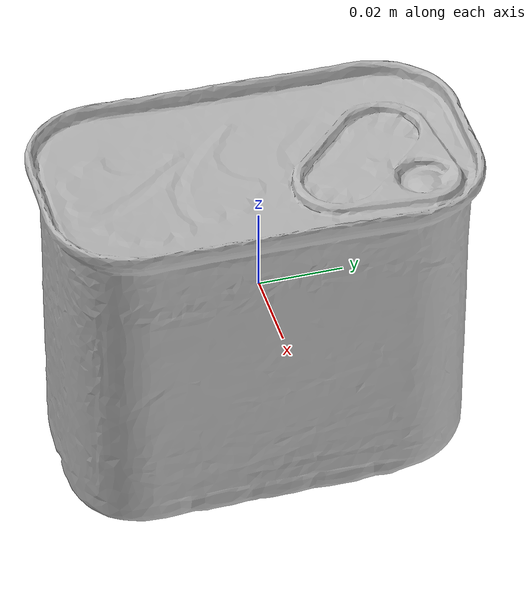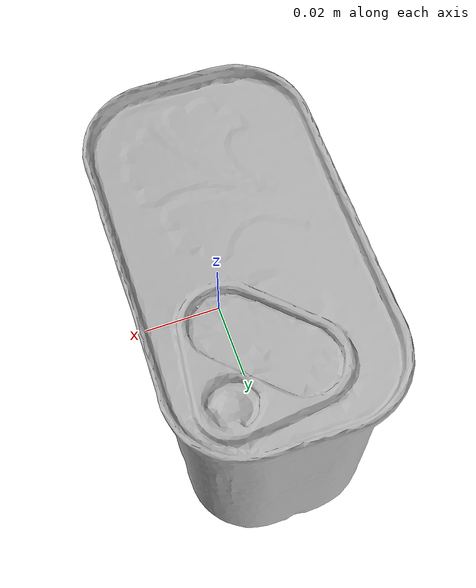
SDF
<?xml version='1.0'?>
<sdf version="1.4">
  <model name="meat_can">
    <static>0</static>
    <link name="link">
      <inertial>
        <mass>0.34</mass>
        <!-- https://www.google.com/search?q=12+oz+to+kg&oq=12+oz+to+kg&aqs=chrome..69i57j6j0.1740j0j4&sourceid=chrome&ie=UTF-8 -->
        <inertia> <!-- inertias are tricky to compute -->
          <!-- http://gazebosim.org/tutorials?tut=inertia&cat=build_robot -->
          <ixx>0.000287</ixx>    <!-- for a box: ixx = 0.083 * mass * (y*y + z*z) -->
          <ixy>0.0</ixy>         <!-- for a box: ixy = 0 -->
          <ixz>0.0</ixz>         <!-- for a box: ixz = 0 -->
          <iyy>0.000381</iyy>    <!-- for a box: iyy = 0.083 * mass * (x*x + z*z) -->
          <iyz>0.0</iyz>         <!-- for a box: iyz = 0 -->
          <izz>0.000578</izz>    <!-- for a box: izz = 0.083 * mass * (x*x + y*y) -->
        </inertia>
      </inertial>
      <collision name="collision">
        <pose>-0.005 0 -0.01 0 1.57 0</pose>
        <geometry>
          <box>
            <size>0.081 0.093 0.057</size>
          </box>
        </geometry>
      </collision>
      <visual name="visual">
        <pose>-0.03 0.035 -0.047 -1.57 -0 1.51</pose>
        <geometry>
          <mesh>
            <uri>model://meat_can/meshes/meat_can.dae</uri>
          </mesh>
        </geometry>
      </visual>
      <velocity_decay>
        <linear>0.000000</linear>
        <angular>0.000000</angular>
      </velocity_decay>
      <self_collide>0</self_collide>
      <kinematic>0</kinematic>
      <gravity>1</gravity>
    </link>
  </model>
</sdf>
